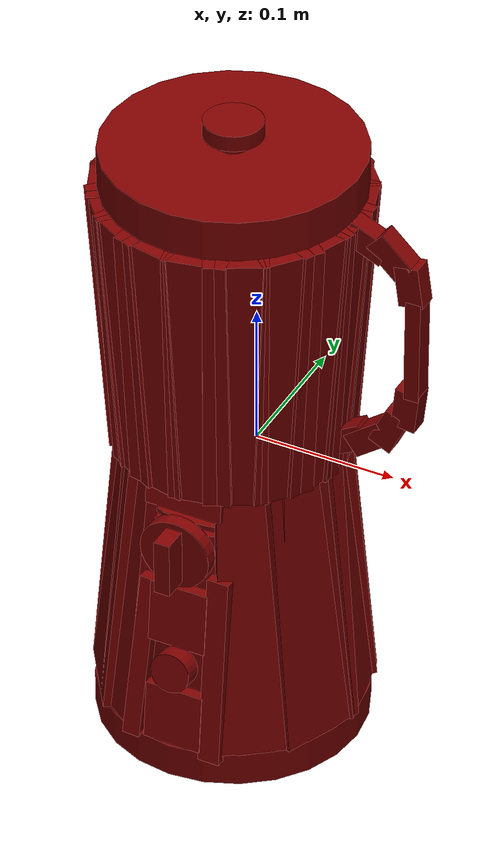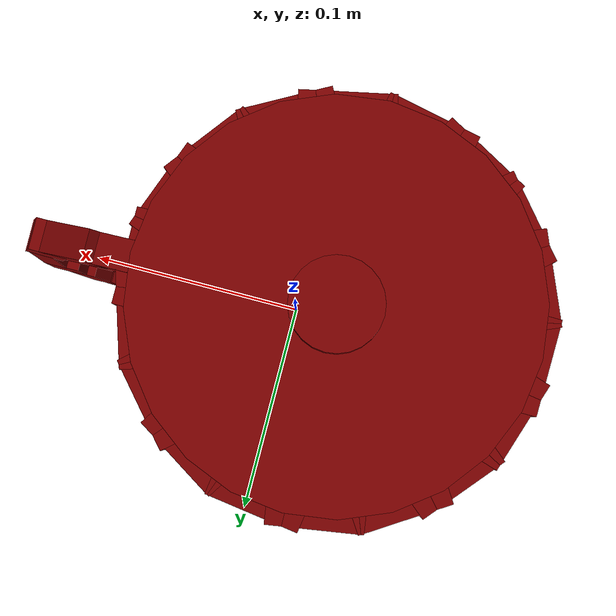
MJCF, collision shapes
<?xml version='1.0' encoding='UTF-8'?>
<mujoco model="model">
  <compiler angle="radian"/>
  <asset>
    <mesh file="visuals/Blade001.obj" name="Blade001_vis"/>
    <mesh file="visuals/Body001.obj" name="Body001_vis"/>
    <mesh file="visuals/Button001.obj" name="Button001_vis"/>
    <mesh file="visuals/Jug001.obj" name="Jug001_vis"/>
    <mesh file="visuals/Jug001_Clear.obj" name="Jug001_Clear_vis"/>
    <mesh file="visuals/Knob001.obj" name="Knob001_vis"/>
    <mesh file="visuals/Lid001.obj" name="Lid001_vis"/>
    <texture file="visuals/T_BC001.png" name="Body001_material" type="2d"/>
    <material name="Body001_material" rgba="1 1 1 1.0" texture="Body001_material" shininess="0.2472135901451111" specular="1"/>
    <texture file="visuals/T_BC001.png" name="Button001_material" type="2d"/>
    <material name="Button001_material" rgba="1 1 1 1.0" texture="Button001_material" shininess="0.4472135901451111" specular="0.3103448502657381"/>
    <material name="Jug001_Clear_material" rgba="0.03639296442270279 0.03639296442270279 0.03639296442270279 0.75" shininess="0.4472135901451111" specular="0.3103448502657381"/>
    <texture file="visuals/T_BC001.png" name="Blade001_material" type="2d"/>
    <material name="Blade001_material" rgba="1 1 1 1.0" texture="Blade001_material" shininess="0.4472135901451111" specular="1"/>
    <texture file="visuals/T_BC001.png" name="Jug001_material" type="2d"/>
    <material name="Jug001_material" rgba="1 1 1 1.0" texture="Jug001_material" shininess="0.4472135901451111" specular="0.3103448502657381"/>
    <texture file="visuals/T_BC001.png" name="Lid001_material" type="2d"/>
    <material name="Lid001_material" rgba="1 1 1 1.0" texture="Lid001_material" shininess="0.4472135901451111" specular="0.3103448502657381"/>
    <texture file="visuals/T_BC001.png" name="Knob001_material" type="2d"/>
    <material name="Knob001_material" rgba="1 1 1 1.0" texture="Knob001_material" shininess="0.4472135901451111" specular="0.3103448502657381"/>
  </asset>
  <default>
    <default class="visual">
      <geom conaffinity="0" contype="0" group="1" type="mesh"/>
    </default>
    <default class="collision">
      <geom group="0" rgba="0.5 0 0 0.5"/>
    </default>
    <default class="spawn">
      <geom group="0" rgba="1 1 1 0.5" contype="0" conaffinity="0"/>
      <site group="0" rgba="1 1 1 0.5"/>
    </default>
    <default class="region">
      <geom group="1" conaffinity="0" contype="0" rgba="0 1 0 0"/>
    </default>
  </default>
  <worldbody>
    <body>
      <body name="object">
        <geom mesh="Body001_vis" type="mesh" solimp="0.998 0.998 0.001" solref="0.001 1" density="100" friction="0.95 0.3 0.1" class="visual" material="Body001_material"/>
        <geom class="collision" type="box" pos="-0.045081 -0.078049 -0.145290" size="0.006290201563388109 0.004342055879533291 0.06407251954078674" quat="0.998228132724762 -0.049642372876405716 0.03276519104838371 0.0016294339438900352"/>
        <geom class="collision" type="box" pos="0.053753 -0.024516 -0.107226" size="0.031314998865127563 0.0043420568108558655 0.09979217499494553" quat="0.8261741399765015 -0.04108605533838272 -0.02790989726781845 0.5612212419509888"/>
        <geom class="collision" type="box" pos="0.038570 0.057754 -0.107226" size="0.03131500259041786 0.004342056345194578 0.09979217499494553" quat="0.40196719765663147 -0.01999003440141678 -0.04546890780329704 0.9143059253692627"/>
        <geom class="collision" type="box" pos="-0.051702 0.076371 -0.107226" size="0.03131500259041786 0.0043420568108558655 0.09979217499494553" quat="0.20901905000209808 -0.010394622571766376 0.04856926202774048 -0.9766494035720825"/>
        <geom class="collision" type="box" pos="-0.098154 0.007905 -0.107226" size="0.03131500259041786 0.0043420568108558655 0.09979218244552612" quat="0.6908359527587891 -0.034355610609054565 0.03587077558040619 -0.7213034629821777"/>
        <geom class="collision" type="box" pos="-0.084307 -0.040203 -0.107226" size="0.03131500259041786 0.004342056345194578 0.09979218244552612" quat="0.8842520713806152 -0.043974295258522034 0.023092910647392273 -0.46436113119125366"/>
        <geom class="collision" type="box" pos="-0.063336 -0.060904 -0.107226" size="0.017695583403110504 0.004342057276517153 0.09979221969842911" quat="0.9555090069770813 -0.0475178100168705 0.014459053985774517 -0.2907498776912689"/>
        <geom class="collision" type="box" pos="-0.087675 0.043890 -0.107226" size="0.03131500259041786 0.0043420568108558655 0.09979217499494553" quat="0.4993739724159241 -0.024834129959344864 0.043014995753765106 -0.8649616241455078"/>
        <geom class="collision" type="box" pos="-0.003594 0.081654 -0.107226" size="0.03131500259041786 0.0043420568108558655 0.09979217499494553" quat="0.1011553704738617 -0.005030521657317877 -0.049413956701755524 0.9936299920082092"/>
        <geom class="collision" type="box" pos="0.057735 0.020111 -0.107226" size="0.031314998865127563 0.0043420568108558655 0.09979217499494553" quat="0.6324239373207092 -0.03145076334476471 -0.03844309598207474 0.7730284333229065"/>
        <geom class="collision" type="box" pos="0.026649 -0.059341 -0.107226" size="0.022470667958259583 0.004342057276517153 0.09979216754436493" quat="0.9503158926963806 -0.047259774059057236 -0.015282218344509602 0.30729907751083374"/>
        <geom class="collision" type="cylinder" pos="-0.067739 -0.042749 -0.235308" size="0.007523544132709503 0.004609951749444008" quat="1.0 0.0 0.0 0.0"/>
        <geom class="collision" type="cylinder" pos="-0.019466 0.004508 -0.218466" size="0.09451781958341599 0.012371077202260494" quat="1.0 0.0 0.0 0.0"/>
        <geom class="collision" type="cylinder" pos="0.028826 -0.042749 -0.235308" size="0.007523566018790007 0.004609973169863224" quat="1.0 0.0 0.0 0.0"/>
        <geom class="collision" type="cylinder" pos="-0.067739 0.051961 -0.235308" size="0.007523576728999615 0.004609983880072832" quat="1.0 0.0 0.0 0.0"/>
        <geom class="collision" type="cylinder" pos="0.028826 0.051961 -0.235308" size="0.007523587439209223 0.00460999459028244" quat="1.0 0.0 0.0 0.0"/>
        <geom class="collision" type="cylinder" pos="-0.019466 0.004508 -0.036216" size="0.0683380588889122 0.0018439501291140914" quat="1.0 0.0 0.0 0.0"/>
        <geom class="collision" type="box" pos="0.009406 -0.077014 -0.139980" size="0.007842416875064373 0.004342055879533291 0.07178051769733429" quat="0.9987657070159912 -0.04966913163661957 1.1028762711222566e-17 -3.0471712783511055e-24"/>
        <geom class="collision" type="box" pos="-0.018388 -0.074048 -0.105168" size="0.020939840003848076 0.004342056345194578 0.02302616462111473" quat="0.9987657070159912 -0.04966913163661957 1.1028762711222566e-17 -3.0471712783511055e-24"/>
        <geom class="collision" type="box" pos="-0.018388 -0.081975 -0.184455" size="0.020939840003848076 0.004321036394685507 0.021655265241861343" quat="0.9987657070159912 -0.04966913163661957 1.1028762711222566e-17 -3.0471712783511055e-24"/>
        <geom class="collision" type="box" pos="-0.018388 -0.065172 -0.016145" size="0.02766570821404457 0.004342055879533291 0.007168604526668787" quat="0.9987657070159912 -0.04966913163661957 1.1028762711222566e-17 -3.0471712783511055e-24"/>
        <geom class="collision" type="cylinder" pos="-0.019466 0.004369 -0.112411" size="0.0711572915315628 0.07241784036159515" quat="1.0 0.0 0.0 0.0"/>
        <body name="Button001">
          <joint axis="0.0 1.0 0.0" pos="-0.019466 -0.081530 -0.146423" limited="true" name="Button001_joint" range="0.0 0.0025" type="slide" damping="1" frictionloss="1" armature=".01" stiffness="0.05"/>
          <geom mesh="Button001_vis" type="mesh" solimp="0.998 0.998 0.001" solref="0.001 1" density="100" friction="0.95 0.3 0.1" class="visual" material="Button001_material"/>
          <geom class="collision" type="cylinder" pos="-0.019466 -0.081525 -0.146424" size="0.014364420436322689 0.006613458041101694" quat="0.7555490732192993 0.6550920605659485 1.1152972152003528e-17 -1.115296967046169e-17"/>
        </body>
        <body name="Jug001_Clear">
          <joint axis="0.0 0.0 1.0" pos="0.000000 0.004508 0.080194" limited="true" name="Jug001_Clear_joint" range="0.0 0.1" type="slide" damping="1" frictionloss="1" armature=".01" stiffness="0.05"/>
          <geom mesh="Jug001_Clear_vis" type="mesh" solimp="0.998 0.998 0.001" solref="0.001 1" density="100" friction="0.95 0.3 0.1" class="visual" material="Jug001_Clear_material"/>
          <geom class="collision" type="box" pos="0.061658 0.004515 0.092138" size="0.004797820001840591 0.021256864070892334 0.09871997684240341" quat="0.9994385838508606 -1.3612217567861816e-15 0.03350444138050079 4.501618189323153e-09"/>
          <geom class="collision" type="box" pos="0.042254 0.057404 0.092138" size="0.004797819536179304 0.02125686965882778 0.09871996939182281" quat="0.9382874965667725 -0.0115397023037076 0.031454458832740784 0.3442296087741852"/>
          <geom class="collision" type="box" pos="-0.008277 0.085435 0.092138" size="0.004797815345227718 0.021256867796182632 0.09871996939182281" quat="0.7561712265014648 -0.021907974034547806 0.0253493282943964 0.6535155177116394"/>
          <geom class="collision" type="box" pos="-0.064495 0.073215 0.092138" size="0.004797819536179304 0.021256865933537483 0.09871996194124222" quat="0.47799187898635864 -0.02942420355975628 0.016023846343159676 0.8777250051498413"/>
          <geom class="collision" type="box" pos="-0.098094 0.029196 0.092138" size="0.004797817207872868 0.021256865933537483 0.09871996194124222" quat="0.15259899199008942 -0.033111367374658585 0.005115586798638105 0.9877201318740845"/>
          <geom class="collision" type="box" pos="-0.095250 -0.027805 0.092138" size="0.004797815345227718 0.021256865933537483 0.09871996939182281" quat="0.20162884891033173 0.032815542072057724 0.006759255193173885 -0.9788888096809387"/>
          <geom class="collision" type="box" pos="-0.059708 -0.067050 0.092138" size="0.004797820001840591 0.021256867796182632 0.09871996194124222" quat="0.5076490640640259 0.028860589489340782 0.01701805181801319 -0.8609122633934021"/>
          <geom class="collision" type="box" pos="-0.003497 -0.075559 0.092138" size="0.004797819536179304 0.021256867796182632 0.09871997684240341" quat="0.7752306461334229 0.021146109327673912 0.02598826214671135 -0.6307891011238098"/>
          <geom class="collision" type="box" pos="0.044471 -0.045643 0.092138" size="0.004797819536179304 0.021256867796182632 0.0987199917435646" quat="0.9454727172851562 0.010860658250749111 0.03169533982872963 -0.32397347688674927"/>
          <geom class="collision" type="box" pos="0.058096 0.028388 0.092138" size="0.004797820001840591 0.021256865933537483 0.09871996194124222" quat="0.9884965419769287 -0.004944205284118652 0.03313766047358513 0.14748571813106537"/>
          <geom class="collision" type="box" pos="0.056299 -0.024602 0.092138" size="0.004797819536179304 0.021256867796182632 0.09871997684240341" quat="0.9829298257827759 0.006064509507268667 0.03295101597905159 -0.18090449273586273"/>
          <geom class="collision" type="box" pos="0.019153 -0.067218 0.092138" size="0.004797819536179304 0.02125686965882778 0.09871996194124222" quat="0.8598279356956482 0.017079556360840797 0.028824234381318092 -0.5094834566116333"/>
          <geom class="collision" type="box" pos="-0.037094 -0.075488 0.092138" size="0.004797819536179304 0.021256867796182632 0.09871996939182281" quat="0.6291347146034241 0.02603328973054886 0.02109065093100071 -0.7765738368034363"/>
          <geom class="collision" type="box" pos="-0.082544 -0.048326 0.092138" size="0.004797820001840591 0.021256867796182632 0.09871996939182281" quat="0.34387457370758057 0.031458817422389984 0.011527794413268566 -0.9384176731109619"/>
          <geom class="collision" type="box" pos="-0.101903 0.005361 0.092138" size="0.0047978186048567295 0.021256865933537483 0.09871996939182281" quat="0.0051720221526920795 -0.03350399434566498 0.00017338321777060628 0.9994251728057861"/>
          <geom class="collision" type="box" pos="-0.082616 0.057271 0.092138" size="0.004797820001840591 0.021256865933537483 0.09871997684240341" quat="0.3432343602180481 -0.03146668151021004 0.011506336741149426 0.9386520385742188"/>
          <geom class="collision" type="box" pos="-0.032414 0.085369 0.092138" size="0.004797820001840591 0.021256865933537483 0.09871996194124222" quat="0.6514542698860168 -0.025408880785107613 0.021838875487446785 0.7579477429389954"/>
          <geom class="collision" type="box" pos="0.024099 0.073309 0.092138" size="0.004797819536179304 0.02125686965882778 0.09871996939182281" quat="0.8772175908088684 -0.016055047512054443 0.02940719574689865 0.4789225459098816"/>
          <geom class="collision" type="box" pos="0.036526 -0.017253 -0.004086" size="0.014097915031015873 0.013783157803118229 0.0020905467681586742" quat="0.983661949634552 1.4869330766664746e-10 -2.7213188300012625e-11 -0.18002544343471527"/>
          <geom class="collision" type="box" pos="0.012963 -0.046476 -0.004086" size="0.014097914099693298 0.013783156871795654 0.0020905453711748123" quat="0.8787503838539124 1.3283457667156995e-10 -7.214734365490472e-11 -0.4772816002368927"/>
          <geom class="collision" type="box" pos="-0.027032 -0.055767 -0.004086" size="0.014097915031015873 0.013783157803118229 0.002090544207021594" quat="0.6637383699417114 1.0033272823672945e-10 -1.1306464098304048e-10 -0.7479647994041443"/>
          <geom class="collision" type="box" pos="-0.064484 -0.036452 -0.004086" size="0.014097915031015873 0.013783157803118229 0.0020905467681586742" quat="0.3605376183986664 5.449997050877009e-11 -1.4099650613719206e-10 -0.9327446818351746"/>
          <geom class="collision" type="box" pos="-0.079990 -0.000423 -0.004086" size="0.014097915962338448 0.013783158734440804 0.0020905453711748123" quat="0.0375555194914341 5.6770890072277425e-12 -1.5105816597582589e-10 -0.9992945194244385"/>
          <geom class="collision" type="box" pos="-0.069873 0.037788 -0.004086" size="0.014097915031015873 0.013783157803118229 0.0020905467681586742" quat="0.29206669330596924 4.414969084765019e-11 1.445720348991486e-10 0.9563979506492615"/>
          <geom class="collision" type="box" pos="-0.039338 0.061168 -0.004086" size="0.014097915962338448 0.013783158734440804 0.0020905453711748123" quat="0.5818083882331848 8.794792671906748e-11 1.229448071127237e-10 0.8133258819580078"/>
          <geom class="collision" type="box" pos="-0.000136 0.061081 -0.004086" size="0.014097915962338448 0.013783158734440804 0.0020905467681586742" quat="0.8146055936813354 1.2313829123034026e-10 8.767690740096867e-11 0.5800153017044067"/>
          <geom class="collision" type="box" pos="0.030827 0.036757 -0.004086" size="0.014097915031015873 0.013783157803118229 0.002090544207021594" quat="0.959339439868927 1.450167208538744e-10 4.266653350071259e-11 0.2822549343109131"/>
          <geom class="collision" type="box" pos="0.040229 0.009075 -0.004086" size="0.014097917824983597 0.013783160597085953 0.0020905467681586742" quat="0.9991481900215149 1.5103426842522083e-10 6.238013577908319e-12 0.0412667915225029"/>
          <geom class="collision" type="box" pos="0.034573 0.030035 -0.004086" size="0.014097915031015873 0.013783157803118229 0.00209054839797318" quat="0.9753949642181396 1.47443668385705e-10 3.3326119641685636e-11 0.22046473622322083"/>
          <geom class="collision" type="box" pos="0.015976 0.052593 -0.004086" size="0.014097917824983597 0.013783160597085953 0.0020905453711748123" quat="0.8928526639938354 1.349663159011527e-10 6.807611419024084e-11 0.4503489136695862"/>
          <geom class="collision" type="box" pos="-0.021594 0.064375 -0.004086" size="0.01418222114443779 0.01448780857026577 0.002090529538691044" quat="1.0 0.0 0.0 0.0"/>
          <geom class="collision" type="box" pos="-0.058287 0.050571 -0.004086" size="0.014097915031015873 0.013783157803118229 0.0020905467681586742" quat="0.42588338255882263 6.437782251733637e-11 1.3676898502623658e-10 0.9047780632972717"/>
          <geom class="collision" type="box" pos="-0.078562 0.017893 -0.004086" size="0.014097915031015873 0.013783157803118229 0.0020905467681586742" quat="0.1151188462972641 1.74017154852546e-11 1.5015806653639885e-10 0.9933516979217529"/>
          <geom class="collision" type="box" pos="-0.074489 -0.021425 -0.004086" size="0.014097915962338448 0.013783158734440804 0.0020905467681586742" quat="0.21684034168720245 3.2778245395714833e-11 -1.4756643129665292e-10 -0.9762070775032043"/>
          <geom class="collision" type="box" pos="-0.047229 -0.049627 -0.004086" size="0.014097915031015873 0.013783157803118229 0.0020905453711748123" quat="0.5225650072097778 7.899250004106406e-11 -1.2888151657008962e-10 -0.8525994420051575"/>
          <geom class="collision" type="box" pos="-0.005364 -0.054425 -0.004086" size="0.014097917824983597 0.013783160597085953 0.002090544207021594" quat="0.7875469326972961 1.1904797980744064e-10 -9.31549282157107e-11 -0.6162546873092651"/>
          <geom class="collision" type="box" pos="0.028749 -0.031572 -0.004086" size="0.014097915031015873 0.013783157803118229 0.0020905467681586742" quat="0.9503161907196045 1.436526592124565e-10 -4.7054967561299677e-11 -0.31128624081611633"/>
          <geom class="collision" type="box" pos="0.040434 0.004103 -0.005076" size="0.014097651466727257 0.013782894238829613 0.002090513939037919" quat="1.0 0.0 0.0 0.0"/>
          <geom class="collision" type="box" pos="0.112651 0.004537 0.106318" size="0.005383961834013462 0.007043835241347551 0.038118090480566025" quat="1.0 0.0 0.0 0.0"/>
          <geom class="collision" type="box" pos="0.108983 0.004537 0.155694" size="0.008588218130171299 0.007043835241347551 0.014595777727663517" quat="0.9973220229148865 -8.794946379248741e-16 -0.07313574850559235 -9.826434776982751e-09"/>
          <geom class="collision" type="box" pos="0.094904 0.004537 0.173718" size="0.008588218130171299 0.007043835241347551 0.014595777727663517" quat="0.9171411991119385 -8.441334687725541e-15 -0.398562490940094 -5.355040144650047e-08"/>
          <geom class="collision" type="box" pos="0.078129 0.004537 0.179601" size="0.008588218130171299 0.007043835241347551 0.014595777727663517" quat="0.5457764863967896 -6.594723411020714e-14 0.8379307985305786 1.1258333643127116e-07"/>
          <geom class="collision" type="box" pos="0.081333 0.004537 0.025875" size="0.008588218130171299 0.007043835241347551 0.014595777727663517" quat="0.4469589293003082 -2.5602803432889232e-08 -0.8945544958114624 1.0351514134754325e-07"/>
          <geom class="collision" type="box" pos="0.096579 0.004537 0.037802" size="0.008588218130171299 0.007043835241347551 0.014595777727663517" quat="0.9753509759902954 1.9959708552619304e-08 0.2206592708826065 -7.557731152019187e-08"/>
          <geom class="collision" type="box" pos="0.108486 0.004537 0.058521" size="0.008588218130171299 0.007043835241347551 0.014595777727663517" quat="0.9985536336898804 3.8145056557858936e-10 0.05376478657126427 -1.2425408257854542e-08"/>
          <geom class="collision" type="box" pos="0.066258 0.004537 0.020413" size="0.008588218130171299 0.007043835241347551 0.014595777727663517" quat="0.503902018070221 -1.1074689609813504e-08 -0.8637608289718628 1.0884013335044074e-07"/>
          <geom class="collision" type="box" pos="0.026590 -0.013463 -0.019143" size="0.009812936186790466 0.011892476119101048 0.01440267264842987" quat="0.983661949634552 1.4869330766664746e-10 -2.7213188300012625e-11 -0.18002544343471527"/>
          <geom class="collision" type="box" pos="0.007171 -0.037527 -0.019143" size="0.00980029720813036 0.011892472393810749 0.01440267264842987" quat="0.8787503838539124 1.3283457667156995e-10 -7.214734365490472e-11 -0.4772816002368927"/>
          <geom class="collision" type="box" pos="-0.025814 -0.045544 -0.019143" size="0.010167481377720833 0.011892477981746197 0.014402669854462147" quat="0.6637383699417114 1.0033272823672945e-10 -1.1306464098304048e-10 -0.7479647994041443"/>
          <geom class="collision" type="box" pos="-0.057129 -0.029737 -0.019143" size="0.010493009351193905 0.011892473325133324 0.01440267264842987" quat="0.3605376183986664 5.449997050877009e-11 -1.4099650613719206e-10 -0.9327446818351746"/>
          <geom class="collision" type="box" pos="-0.069954 0.000360 -0.019143" size="0.01036880910396576 0.011892478913068771 0.01440267264842987" quat="0.0375555194914341 5.6770890072277425e-12 -1.5105816597582589e-10 -0.9992945194244385"/>
          <geom class="collision" type="box" pos="-0.061373 0.032090 -0.019143" size="0.010184808634221554 0.011892474256455898 0.01440267264842987" quat="0.29206669330596924 4.414969084765019e-11 1.445720348991486e-10 0.9563979506492615"/>
          <geom class="collision" type="box" pos="-0.035910 0.051142 -0.019143" size="0.00981199461966753 0.011892472393810749 0.01440267264842987" quat="0.5818083882331848 8.794792671906748e-11 1.229448071127237e-10 0.8133258819580078"/>
          <geom class="collision" type="box" pos="-0.003702 0.050814 -0.019143" size="0.00954082328826189 0.011892472393810749 0.01440267264842987" quat="0.8146055936813354 1.2313829123034026e-10 8.767690740096867e-11 0.5800153017044067"/>
          <geom class="collision" type="box" pos="0.021399 0.030713 -0.019143" size="0.009223192930221558 0.011892476119101048 0.01440267264842987" quat="0.959339439868927 1.450167208538744e-10 4.266653350071259e-11 0.2822549343109131"/>
          <geom class="collision" type="box" pos="0.029447 0.003722 -0.019143" size="0.009248089045286179 0.011892478913068771 0.014402669854462147" quat="0.9991481900215149 1.5103426842522083e-10 6.238013577908319e-12 0.0412667915225029"/>
          <geom class="collision" type="box" pos="0.026463 0.021778 -0.019143" size="0.008628114126622677 0.011892474256455898 0.014402675442397594" quat="0.9753949642181396 1.47443668385705e-10 3.3326119641685636e-11 0.22046473622322083"/>
          <geom class="collision" type="box" pos="0.009453 0.043798 -0.019143" size="0.009464828297495842 0.011892473325133324 0.014402669854462147" quat="0.8928526639938354 1.349663159011527e-10 6.807611419024084e-11 0.4503489136695862"/>
          <geom class="collision" type="box" pos="-0.021359 0.053420 -0.019143" size="0.0122368223965168 0.00978539977222681 0.014402681961655617" quat="1.0 0.0 0.0 0.0"/>
          <geom class="collision" type="box" pos="-0.051773 0.042719 -0.019143" size="0.010209841653704643 0.011892473325133324 0.01440267264842987" quat="0.42588338255882263 6.437782251733637e-11 1.3676898502623658e-10 0.9047780632972717"/>
          <geom class="collision" type="box" pos="-0.068469 0.015549 -0.019143" size="0.010064947418868542 0.011892477981746197 0.014402673579752445" quat="0.1151188462972641 1.74017154852546e-11 1.5015806653639885e-10 0.9933516979217529"/>
          <geom class="collision" type="box" pos="-0.065393 -0.017145 -0.019143" size="0.010391995310783386 0.011892476119101048 0.01440267264842987" quat="0.21684034168720245 3.2778245395714833e-11 -1.4756643129665292e-10 -0.9762070775032043"/>
          <geom class="collision" type="box" pos="-0.042598 -0.040502 -0.019143" size="0.010226324200630188 0.011892476119101048 0.014402669854462147" quat="0.5225650072097778 7.899250004106406e-11 -1.2888151657008962e-10 -0.8525994420051575"/>
          <geom class="collision" type="box" pos="-0.007935 -0.044028 -0.019143" size="0.009752041660249233 0.011892474256455898 0.014402667991816998" quat="0.7875469326972961 1.1904797980744064e-10 -9.31549282157107e-11 -0.6162546873092651"/>
          <geom class="collision" type="box" pos="0.020115 -0.025210 -0.019143" size="0.009728861972689629 0.011892473325133324 0.014402669854462147" quat="0.9503161907196045 1.436526592124565e-10 -4.7054967561299677e-11 -0.31128624081611633"/>
          <body name="Blade001">
            <joint axis="0.0 0.0 1.0" pos="-0.019465 0.004225 0.018740" limited="false" name="Blade001_joint" range="0 360" type="hinge" damping="1" frictionloss="1" armature=".01" stiffness="0.05"/>
            <geom mesh="Blade001_vis" type="mesh" solimp="0.998 0.998 0.001" solref="0.001 1" density="100" friction="0.95 0.3 0.1" class="visual" material="Blade001_material"/>
            <geom class="collision" type="box" pos="-0.001433 0.022324 0.021886" size="0.01079723984003067 0.005815119948238134 0.000714024412445724" quat="0.9160147905349731 0.0469263419508934 -0.11247249692678452 0.3821842074394226"/>
            <geom class="collision" type="box" pos="-0.012618 0.011054 0.018969" size="0.005312731955200434 0.005815119948238134 0.0007140241796150804" quat="0.9225776791572571 0.01007954590022564 -0.024158546701073647 0.3849223256111145"/>
            <geom class="collision" type="box" pos="-0.037435 -0.013960 0.021743" size="0.01079723984003067 0.005815119948238134 0.000714024412445724" quat="0.3842061460018158 -0.10841871798038483 -0.04944855719804764 -0.9155248999595642"/>
            <geom class="collision" type="box" pos="-0.026280 -0.002637 0.018914" size="0.005312731955200434 0.005815119948238134 0.0007140241796150804" quat="0.38717636466026306 -0.02017034962773323 -0.012396342121064663 -0.9217016696929932"/>
            <geom class="collision" type="box" pos="-0.037446 0.022380 0.015618" size="0.01079723984003067 0.005815119948238134 0.000714024412445724" quat="0.3805498480796814 -0.11204993724822998 0.046787749975919724 0.9167538285255432"/>
            <geom class="collision" type="box" pos="-0.012649 -0.002635 0.018558" size="0.005312731955200434 0.005815119948238134 0.0007140241796150804" quat="0.9242292642593384 0.0055140056647360325 0.02351902611553669 -0.38107314705848694"/>
            <geom class="collision" type="box" pos="-0.001404 -0.013865 0.015715" size="0.01079723984003067 0.005815119948238134 0.000714024412445724" quat="0.917720377445221 0.0420127734541893 0.11199421435594559 -0.37878960371017456"/>
            <geom class="collision" type="box" pos="-0.026248 0.011119 0.018521" size="0.005312731955200434 0.005815119948238134 0.0007140241796150804" quat="0.38328221440315247 -0.023667166009545326 0.010098296217620373 0.9232727885246277"/>
            <geom class="collision" type="box" pos="-0.012649 -0.002635 0.018558" size="0.005312731955200434 0.005815119948238134 0.0007140241796150804" quat="0.9242292642593384 0.0055140056647360325 0.02351902611553669 -0.38107314705848694"/>
            <geom class="collision" type="box" pos="-0.019429 0.004217 0.018751" size="0.004505713935941458 0.004514103289693594 0.0007243526051752269" quat="0.9257199764251709 0.0 -0.0 -0.37820965051651"/>
          </body>
          <body name="Jug001">
            <geom mesh="Jug001_vis" type="mesh" solimp="0.998 0.998 0.001" solref="0.001 1" density="100" friction="0.95 0.3 0.1" class="visual" material="Jug001_material"/>
            <geom class="collision" type="cylinder" pos="-0.019466 0.004508 -0.007745" size="0.04143597558140755 0.007566837128251791" quat="1.0 0.0 0.0 0.0"/>
            <geom class="collision" type="cylinder" pos="-0.019466 0.004508 0.002803" size="0.01418313104659319 0.012319022789597511" quat="1.0 0.0 0.0 0.0"/>
          </body>
          <body name="Lid001">
            <joint axis="0.0 0.0 1.0" pos="-0.019466 0.004369 0.206123" limited="true" name="Lid001_joint" range="0.0 0.05" type="slide" damping="1" frictionloss="1" armature=".01" stiffness="0.05"/>
            <geom mesh="Lid001_vis" type="mesh" solimp="0.998 0.998 0.001" solref="0.001 1" density="100" friction="0.95 0.3 0.1" class="visual" material="Lid001_material"/>
            <geom class="collision" type="cylinder" pos="-0.019913 0.004369 0.183076" size="0.07600810378789902 0.010581719689071178" quat="1.0 0.0 0.0 0.0"/>
            <geom class="collision" type="cylinder" pos="-0.019466 0.004369 0.206826" size="0.08795700967311859 0.014345938339829445" quat="1.0 0.0 0.0 0.0"/>
            <geom class="collision" type="cylinder" pos="-0.019466 0.004369 0.225328" size="0.010166909545660019 0.006375753786414862" quat="1.0 0.0 0.0 0.0"/>
            <geom class="collision" type="cylinder" pos="-0.019466 0.004369 0.235157" size="0.020150093361735344 0.005524957552552223" quat="1.0 0.0 0.0 0.0"/>
          </body>
        </body>
        <body name="Knob001">
          <joint axis="0.0 1.0 0.0" pos="-0.019170 -0.082483 -0.050620" limited="true" name="Knob001_joint" range="0.0 4.886921905584122" type="hinge" damping="0.05" armature="0.001"/>
          <geom mesh="Knob001_vis" type="mesh" solimp="0.998 0.998 0.001" solref="0.001 1" density="100" friction="0.95 0.3 0.1" class="visual" material="Knob001_material"/>
          <geom class="collision" type="box" pos="-0.019190 -0.087944 -0.050595" size="0.005749834235757589 0.010156050324440002 0.02045282907783985" quat="1.0 0.0 0.0 0.0"/>
          <geom class="collision" type="cylinder" pos="-0.019311 -0.075596 -0.050672" size="0.02542409487068653 0.004805106204003096" quat="0.7071067690849304 0.7071067690849304 0.0 0.0"/>
        </body>
        <geom class="region" name="reg_main" type="box" pos="-0.0218145 0.004457999999999997 0.0" size="0.0954155 0.093117 0.239918"/>
      </body>
    </body>
  </worldbody>
  <actuator>
    <motor name="Button001_joint_actuator" joint="Button001_joint" gear="0.5"/>
    <motor name="Jug001_Clear_joint_actuator" joint="Jug001_Clear_joint" gear="40"/>
    <motor name="Knob001_joint_actuator" joint="Knob001_joint" gear="7"/>
    <motor name="Blade001_joint_actuator" joint="Blade001_joint" gear="20"/>
    <motor name="Lid001_joint_actuator" joint="Lid001_joint" gear="20"/>
  </actuator>
</mujoco>
